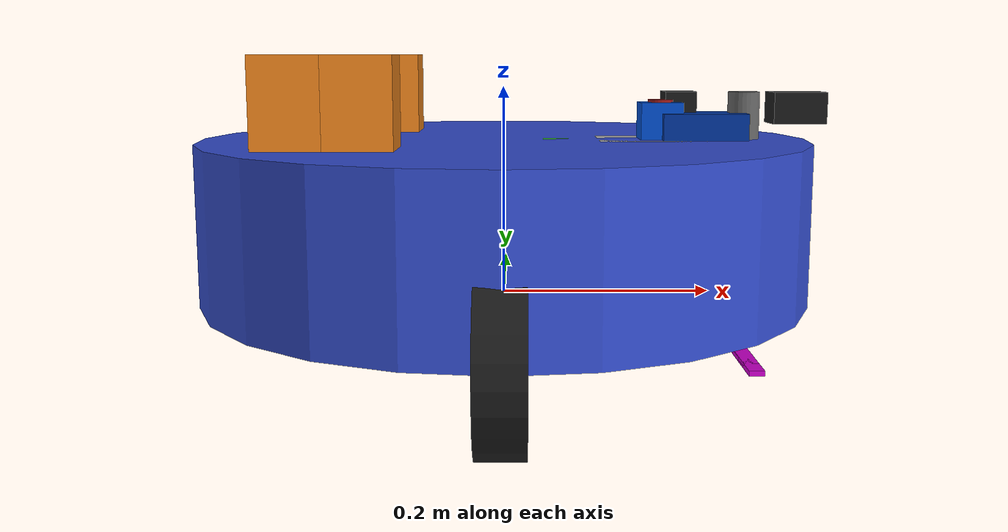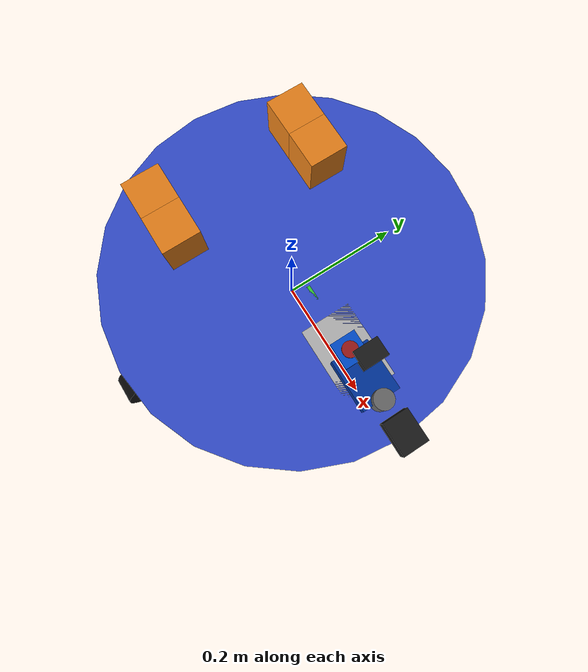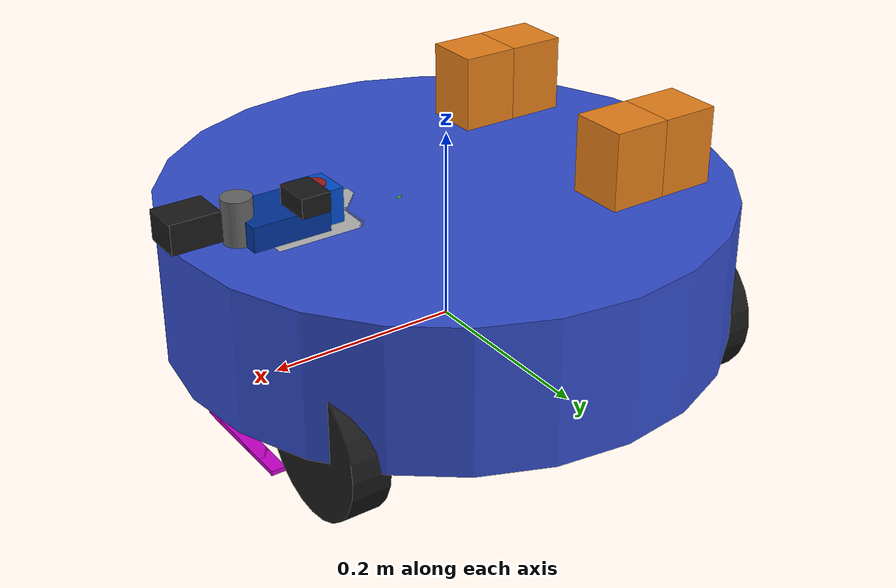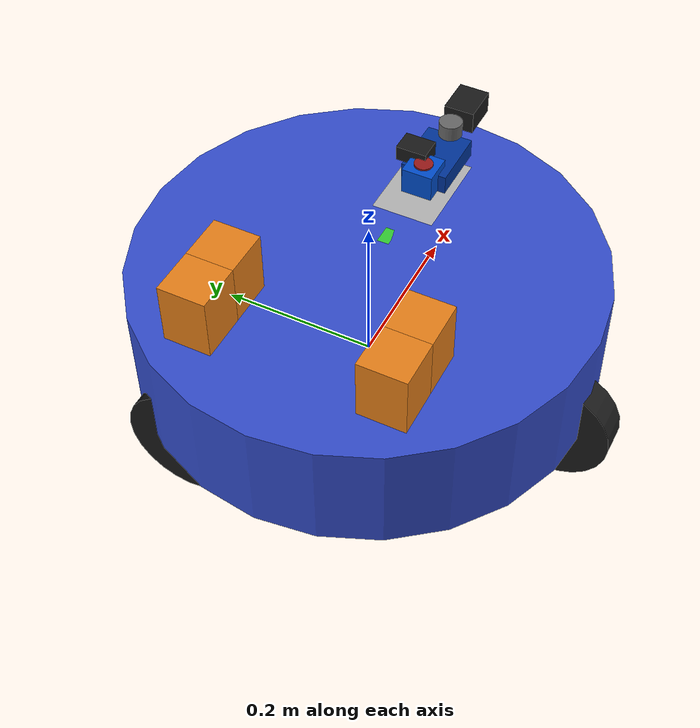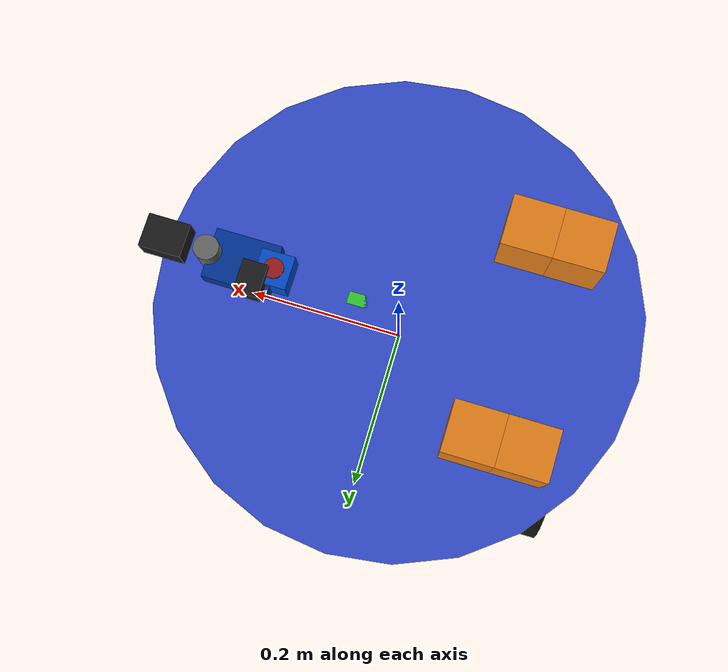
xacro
<?xml version="1.0"?>
<robot name="my_robot" xmlns:xacro="http://www.ros.org/wiki/xacro">

  <!-- Arguments -->
  <xacro:arg name="use_ros2_control" default="true"/>
  <xacro:arg name="use_sim_time" default="true"/>

  <!-- Macros defined below -->

  <!-- Robot base properties - Hexagonal robot -->
  <xacro:property name="base_radius" value="0.3"/>
  <xacro:property name="base_height" value="0.15"/>
  <xacro:property name="wheel_radius" value="0.075"/>
  <xacro:property name="wheel_width" value="0.04"/>
  <!-- Hexagonal shape properties -->
  <xacro:property name="hexagon_side" value="0.25"/>

  <!-- Wheel positions for 3-wheeled omnidirectional robot (lf, rf, b) -->
  <!-- Front Left wheel -->
  <xacro:property name="wheel_lf_x" value="${hexagon_side * 0.866}"/> <!-- cos(30°) -->
  <xacro:property name="wheel_lf_y" value="${hexagon_side * 0.5}"/>   <!-- sin(30°) -->
  <!-- Front Right wheel -->
  <xacro:property name="wheel_rf_x" value="${-hexagon_side * 0.866}"/> <!-- -cos(30°) -->
  <xacro:property name="wheel_rf_y" value="${hexagon_side * 0.5}"/>   <!-- sin(30°) -->
  <!-- Back wheel -->
  <xacro:property name="wheel_b_x" value="0"/>
  <xacro:property name="wheel_b_y" value="${-hexagon_side}"/>

  <!-- Base link - Hexagonal robot -->
  <link name="base_link">
    <visual>
      <geometry>
        <!-- Hexagonal prism approximation using cylinder -->
        <cylinder length="${base_height}" radius="${hexagon_side * 1.1547}"/> <!-- sqrt(4/3) * side for circumradius -->
      </geometry>
      <material name="blue">
        <color rgba="0.2 0.3 0.8 1.0"/>
      </material>
      <origin xyz="0 0 ${base_height/2}" rpy="0 0 0"/>
    </visual>
    <collision>
      <geometry>
        <!-- Hexagonal prism approximation using cylinder -->
        <cylinder length="${base_height}" radius="${hexagon_side * 1.1547}"/>
      </geometry>
      <origin xyz="0 0 ${base_height/2}" rpy="0 0 0"/>
    </collision>
    <inertial>
      <mass value="10.0"/>
      <!-- Hexagonal inertia calculation -->
      <inertia ixx="0.15" ixy="0.0" ixz="0.0"
               iyy="0.15" iyz="0.0"
               izz="0.25"/>
      <origin xyz="0 0 ${base_height/2}" rpy="0 0 0"/>
    </inertial>
  </link>

  <!-- Omni wheels -->
  <xacro:macro name="omni_wheel" params="name x y">
    <link name="${name}_link">
      <visual>
        <geometry>
          <cylinder length="${wheel_width}" radius="${wheel_radius}"/>
        </geometry>
        <material name="black">
          <color rgba="0.1 0.1 0.1 1.0"/>
        </material>
        <origin xyz="0 0 0" rpy="0 ${pi/2} 0"/>
      </visual>
      <collision>
        <geometry>
          <cylinder length="${wheel_width}" radius="${wheel_radius}"/>
        </geometry>
        <origin xyz="0 0 0" rpy="0 ${pi/2} 0"/>
      </collision>
      <inertial>
        <mass value="0.5"/>
        <inertia ixx="0.005" ixy="0.0" ixz="0.0"
                 iyy="0.005" iyz="0.0"
                 izz="0.01"/>
      </inertial>
    </link>

    <!-- Joint connecting wheel to base -->
    <joint name="${name}_joint" type="continuous">
      <parent link="base_link"/>
      <child link="${name}_link"/>
      <origin xyz="${x} ${y} 0" rpy="0 0 0"/>
      <axis xyz="0 1 0"/>
    </joint>

    <!-- Omni wheel rollers (simplified as passive joints) -->
    <link name="${name}_roller_link">
      <visual>
        <geometry>
          <cylinder length="0.01" radius="0.02"/>
        </geometry>
        <material name="gray">
          <color rgba="0.5 0.5 0.5 1.0"/>
        </material>
        <origin xyz="0 0 0" rpy="${pi/2} 0 0"/>
      </visual>
      <collision>
        <geometry>
          <cylinder length="0.01" radius="0.02"/>
        </geometry>
        <origin xyz="0 0 0" rpy="${pi/2} 0 0"/>
      </collision>
      <inertial>
        <mass value="0.1"/>
        <inertia ixx="0.001" ixy="0.0" ixz="0.0"
                 iyy="0.001" iyz="0.0"
                 izz="0.002"/>
      </inertial>
    </link>

    <!-- Passive joint for rollers -->
    <joint name="${name}_roller_joint" type="continuous">
      <parent link="${name}_link"/>
      <child link="${name}_roller_link"/>
      <origin xyz="0 0 0" rpy="0 0 0"/>
      <axis xyz="1 0 0"/>
    </joint>

    <xacro:if value="$(arg use_ros2_control)">
      <!-- ROS 2 Control interface placeholder -->
    </xacro:if>
  </xacro:macro>

  <!-- Create three omni wheels (lf, rf, b) -->
  <xacro:omni_wheel name="wheel_lf" x="${wheel_lf_x}" y="${wheel_lf_y}"/>
  <xacro:omni_wheel name="wheel_rf" x="${wheel_rf_x}" y="${wheel_rf_y}"/>
  <xacro:omni_wheel name="wheel_b" x="${wheel_b_x}" y="${wheel_b_y}"/>

  <!-- TF-Luna Single-Point LIDAR -->
  <link name="tf_luna_link">
    <visual>
      <geometry>
        <cylinder length="0.035" radius="0.012"/>
      </geometry>
      <material name="dark_red">
        <color rgba="0.6 0.1 0.1 1.0"/>
      </material>
      <origin xyz="0 0 0" rpy="0 0 0"/>
    </visual>
    <collision>
      <geometry>
        <cylinder length="0.035" radius="0.012"/>
      </geometry>
      <origin xyz="0 0 0" rpy="0 0 0"/>
    </collision>
    <inertial>
      <mass value="0.015"/>
      <inertia ixx="0.000005" ixy="0.0" ixz="0.0"
               iyy="0.000005" iyz="0.0"
               izz="0.00001"/>
    </inertial>
  </link>

  <joint name="tf_luna_joint" type="fixed">
    <parent link="base_link"/>
    <child link="tf_luna_link"/>
    <origin xyz="0.15 0 ${base_height + 0.02}" rpy="0 0 0"/>
  </joint>

  <!-- Laser Distance Sensors (6x - 2 per side for wall alignment) -->
  <xacro:macro name="laser_distance_sensor" params="name x y z">
    <link name="${name}_link">
      <visual>
        <geometry>
          <cylinder length="0.03" radius="0.012"/>
        </geometry>
        <material name="red">
          <color rgba="0.8 0.1 0.1 1.0"/>
        </material>
        <origin xyz="0 0 0" rpy="0 0 0"/>
      </visual>
      <collision>
        <geometry>
          <cylinder length="0.03" radius="0.012"/>
        </geometry>
        <origin xyz="0 0 0" rpy="0 0 0"/>
      </collision>
      <inertial>
        <mass value="0.04"/>
        <inertia ixx="0.00005" ixy="0.0" ixz="0.0"
                 iyy="0.00005" iyz="0.0"
                 izz="0.0001"/>
      </inertial>
    </link>

    <joint name="${name}_joint" type="fixed">
      <parent link="base_link"/>
      <child link="${name}_link"/>
      <origin xyz="${x} ${y} ${z}" rpy="0 0 0"/>
    </joint>
  </xacro:macro>

  <!-- HC-SR04 Ultrasonic Sensors (2x front) -->
  <xacro:macro name="hcsr04_sensor" params="name x y z">
    <link name="${name}_link">
      <visual>
        <geometry>
          <cylinder length="0.025" radius="0.008"/>
        </geometry>
        <material name="yellow">
          <color rgba="1.0 1.0 0.0 1.0"/>
        </material>
        <origin xyz="0 0 0" rpy="0 0 0"/>
      </visual>
      <collision>
        <geometry>
          <cylinder length="0.025" radius="0.008"/>
        </geometry>
        <origin xyz="0 0 0" rpy="0 0 0"/>
      </collision>
      <inertial>
        <mass value="0.03"/>
        <inertia ixx="0.00003" ixy="0.0" ixz="0.0"
                 iyy="0.00003" iyz="0.0"
                 izz="0.00006"/>
      </inertial>
    </link>

    <joint name="${name}_joint" type="fixed">
      <parent link="base_link"/>
      <child link="${name}_link"/>
      <origin xyz="${x} ${y} ${z}" rpy="0 0 0"/>
    </joint>
  </xacro:macro>

  <!-- Line Sensors (3x individual, assembled side by side) -->
  <xacro:macro name="line_sensor" params="name x y z">
    <link name="${name}_link">
      <visual>
        <geometry>
          <box size="0.015 0.08 0.005"/>
        </geometry>
        <material name="purple">
          <color rgba="0.8 0.0 0.8 1.0"/>
        </material>
        <origin xyz="0 0 0" rpy="0 0 0"/>
      </visual>
      <collision>
        <geometry>
          <box size="0.015 0.08 0.005"/>
        </geometry>
        <origin xyz="0 0 0" rpy="0 0 0"/>
      </collision>
      <inertial>
        <mass value="0.02"/>
        <inertia ixx="0.00001" ixy="0.0" ixz="0.0"
                 iyy="0.00001" iyz="0.0"
                 izz="0.00002"/>
      </inertial>
    </link>

    <joint name="${name}_joint" type="fixed">
      <parent link="base_link"/>
      <child link="${name}_link"/>
      <origin xyz="${x} ${y} ${z}" rpy="0 0 0"/>
    </joint>
  </xacro:macro>

  <!-- Create laser distance sensors (6x - 2 per side for wall alignment) -->
  <!-- Left side sensors -->
  <xacro:laser_distance_sensor name="laser_left_front" x="${hexagon_side * 0.433}" y="${hexagon_side * 0.75}" z="${base_height/2}"/>
  <xacro:laser_distance_sensor name="laser_left_back" x="${-hexagon_side * 0.433}" y="${hexagon_side * 0.75}" z="${base_height/2}"/>

  <!-- Right side sensors -->
  <xacro:laser_distance_sensor name="laser_right_front" x="${hexagon_side * 0.433}" y="${-hexagon_side * 0.75}" z="${base_height/2}"/>
  <xacro:laser_distance_sensor name="laser_right_back" x="${-hexagon_side * 0.433}" y="${-hexagon_side * 0.75}" z="${base_height/2}"/>

  <!-- Back side sensors -->
  <xacro:laser_distance_sensor name="laser_back_left" x="${-hexagon_side}" y="${hexagon_side * 0.25}" z="${base_height/2}"/>
  <xacro:laser_distance_sensor name="laser_back_right" x="${-hexagon_side}" y="${-hexagon_side * 0.25}" z="${base_height/2}"/>

  <!-- Create HC-SR04 ultrasonic sensors (2x front) -->
  <xacro:hcsr04_sensor name="hcsr04_front_left" x="${hexagon_side * 0.866}" y="${hexagon_side * 0.3}" z="${base_height/2}"/>
  <xacro:hcsr04_sensor name="hcsr04_front_right" x="${hexagon_side * 0.866}" y="${-hexagon_side * 0.3}" z="${base_height/2}"/>

  <!-- Create line sensors (3x individual, assembled side by side at front) -->
  <xacro:line_sensor name="line_sensor_left" x="${hexagon_side * 0.95}" y="0.025" z="-${base_height/2 - 0.01}"/>
  <xacro:line_sensor name="line_sensor_center" x="${hexagon_side * 0.95}" y="0" z="-${base_height/2 - 0.01}"/>
  <xacro:line_sensor name="line_sensor_right" x="${hexagon_side * 0.95}" y="-0.025" z="-${base_height/2 - 0.01}"/>

  <!-- MPU6050 IMU -->
  <link name="mpu6050_link">
    <visual>
      <geometry>
        <box size="0.025 0.015 0.01"/>
      </geometry>
      <material name="green">
        <color rgba="0.2 0.8 0.2 1.0"/>
      </material>
      <origin xyz="0 0 0" rpy="0 0 0"/>
    </visual>
    <collision>
      <geometry>
        <box size="0.025 0.015 0.01"/>
      </geometry>
      <origin xyz="0 0 0" rpy="0 0 0"/>
    </collision>
    <inertial>
      <mass value="0.005"/>
      <inertia ixx="0.000001" ixy="0.0" ixz="0.0"
               iyy="0.000001" iyz="0.0"
               izz="0.000002"/>
    </inertial>
  </link>

  <joint name="mpu6050_joint" type="fixed">
    <parent link="base_link"/>
    <child link="mpu6050_link"/>
    <origin xyz="0.05 0 ${base_height - 0.005}" rpy="0 0 0"/>
  </joint>

  <!-- Camera frame -->
  <link name="camera_link">
    <visual>
      <geometry>
        <box size="0.05 0.04 0.03"/>
      </geometry>
      <material name="black">
        <color rgba="0.1 0.1 0.1 1.0"/>
      </material>
    </visual>
    <collision>
      <geometry>
        <box size="0.05 0.04 0.03"/>
      </geometry>
    </collision>
    <inertial>
      <mass value="0.1"/>
      <inertia ixx="0.0005" ixy="0.0" ixz="0.0"
               iyy="0.0005" iyz="0.0"
               izz="0.001"/>
    </inertial>
  </link>

  <joint name="camera_joint" type="fixed">
    <parent link="base_link"/>
    <child link="camera_link"/>
    <origin xyz="${base_radius - 0.02} 0 ${base_height + 0.03}" rpy="0 0 0"/>
  </joint>

  <!-- Gripper Assembly Base (DC Motor for up/down movement) -->
  <link name="gripper_base_link">
    <visual>
      <geometry>
        <box size="0.12 0.08 0.15"/>
      </geometry>
      <material name="silver">
        <color rgba="0.7 0.7 0.7 1.0"/>
      </material>
      <origin xyz="0 0 0" rpy="0 0 0"/>
    </visual>
    <collision>
      <geometry>
        <box size="0.12 0.08 0.15"/>
      </geometry>
      <origin xyz="0 0 0" rpy="0 0 0"/>
    </collision>
    <inertial>
      <mass value="1.5"/>
      <inertia ixx="0.05" ixy="0.0" ixz="0.0"
               iyy="0.05" iyz="0.0"
               izz="0.03"/>
    </inertial>
  </link>

  <joint name="gripper_base_joint" type="prismatic">
    <parent link="base_link"/>
    <child link="gripper_base_link"/>
    <origin xyz="0.15 0 ${base_height/2}" rpy="0 0 0"/>
    <axis xyz="0 0 1"/>
    <limit effort="50.0" lower="0.0" upper="0.2" velocity="0.15"/>
  </joint>

  <!-- Gripper Components -->

  <!-- Gripper Tilt Servo -->
  <link name="gripper_tilt_link">
    <visual>
      <geometry>
        <box size="0.04 0.04 0.06"/>
      </geometry>
      <material name="blue">
        <color rgba="0.0 0.3 0.8 1.0"/>
      </material>
      <origin xyz="0 0 0" rpy="0 0 0"/>
    </visual>
    <collision>
      <geometry>
        <box size="0.04 0.04 0.06"/>
      </geometry>
      <origin xyz="0 0 0" rpy="0 0 0"/>
    </collision>
    <inertial>
      <mass value="0.08"/>
      <inertia ixx="0.00005" ixy="0.0" ixz="0.0"
               iyy="0.00005" iyz="0.0"
               izz="0.0001"/>
    </inertial>
  </link>

  <joint name="gripper_tilt_joint" type="revolute">
    <parent link="gripper_base_link"/>
    <child link="gripper_tilt_link"/>
    <origin xyz="0 0 0.08" rpy="0 0 0"/>
    <axis xyz="0 1 0"/>
    <limit effort="8.0" lower="-1.57" upper="1.57" velocity="1.5"/>
  </joint>

  <!-- Gripper Open/Close Servo -->
  <link name="gripper_claw_link">
    <visual>
      <geometry>
        <box size="0.08 0.06 0.04"/>
      </geometry>
      <material name="dark_blue">
        <color rgba="0.0 0.2 0.6 1.0"/>
      </material>
      <origin xyz="0 0 0" rpy="0 0 0"/>
    </visual>
    <collision>
      <geometry>
        <box size="0.08 0.06 0.04"/>
      </geometry>
      <origin xyz="0 0 0" rpy="0 0 0"/>
    </collision>
    <inertial>
      <mass value="0.12"/>
      <inertia ixx="0.00008" ixy="0.0" ixz="0.0"
               iyy="0.00008" iyz="0.0"
               izz="0.00015"/>
    </inertial>
  </link>

  <joint name="gripper_claw_joint" type="revolute">
    <parent link="gripper_tilt_link"/>
    <child link="gripper_claw_link"/>
    <origin xyz="0.04 0 0" rpy="0 0 0"/>
    <axis xyz="0 0 1"/>
    <limit effort="6.0" lower="0.0" upper="1.57" velocity="2.0"/>
  </joint>

  <!-- 360-degree Servo for Forward/Backward Movement (Optional) -->
  <link name="gripper_extension_link">
    <visual>
      <geometry>
        <cylinder length="0.08" radius="0.015"/>
      </geometry>
      <material name="gray">
        <color rgba="0.4 0.4 0.4 1.0"/>
      </material>
      <origin xyz="0 0 0" rpy="0 0 0"/>
    </visual>
    <collision>
      <geometry>
        <cylinder length="0.08" radius="0.015"/>
      </geometry>
      <origin xyz="0 0 0" rpy="0 0 0"/>
    </collision>
    <inertial>
      <mass value="0.06"/>
      <inertia ixx="0.00002" ixy="0.0" ixz="0.0"
               iyy="0.00002" iyz="0.0"
               izz="0.00004"/>
    </inertial>
  </link>

  <joint name="gripper_extension_joint" type="continuous">
    <parent link="gripper_claw_link"/>
    <child link="gripper_extension_link"/>
    <origin xyz="0.04 0 0" rpy="0 0 0"/>
    <axis xyz="1 0 0"/>
  </joint>

  <!-- USB Camera mounted on gripper -->
  <link name="gripper_camera_link">
    <visual>
      <geometry>
        <box size="0.03 0.04 0.02"/>
      </geometry>
      <material name="black">
        <color rgba="0.1 0.1 0.1 1.0"/>
      </material>
      <origin xyz="0 0 0" rpy="0 0 0"/>
    </visual>
    <collision>
      <geometry>
        <box size="0.03 0.04 0.02"/>
      </geometry>
      <origin xyz="0 0 0" rpy="0 0 0"/>
    </collision>
    <inertial>
      <mass value="0.04"/>
      <inertia ixx="0.00001" ixy="0.0" ixz="0.0"
               iyy="0.00001" iyz="0.0"
               izz="0.00002"/>
    </inertial>
  </link>

  <joint name="gripper_camera_joint" type="fixed">
    <parent link="gripper_tilt_link"/>
    <child link="gripper_camera_link"/>
    <origin xyz="0.02 0.02 0.03" rpy="0 0 0"/>
  </joint>

  <!-- Container Load System (4 containers) -->
  <xacro:macro name="container" params="name x y z">
    <link name="${name}_link">
      <visual>
        <geometry>
          <box size="0.06 0.06 0.08"/>
        </geometry>
        <material name="orange">
          <color rgba="0.9 0.5 0.1 1.0"/>
        </material>
        <origin xyz="0 0 0" rpy="0 0 0"/>
      </visual>
      <collision>
        <geometry>
          <box size="0.06 0.06 0.08"/>
        </geometry>
        <origin xyz="0 0 0" rpy="0 0 0"/>
      </collision>
      <inertial>
        <mass value="0.3"/>
        <inertia ixx="0.001" ixy="0.0" ixz="0.0"
                 iyy="0.001" iyz="0.0"
                 izz="0.002"/>
      </inertial>
    </link>

    <joint name="${name}_joint" type="fixed">
      <parent link="base_link"/>
      <child link="${name}_link"/>
      <origin xyz="${x} ${y} ${z}" rpy="0 0 0"/>
    </joint>
  </xacro:macro>

  <!-- Create 4 containers -->
  <xacro:container name="container_left_front" x="-0.12" y="0.12" z="${base_height + 0.04}"/>
  <xacro:container name="container_left_back" x="-0.18" y="0.12" z="${base_height + 0.04}"/>
  <xacro:container name="container_right_front" x="-0.12" y="-0.12" z="${base_height + 0.04}"/>
  <xacro:container name="container_right_back" x="-0.18" y="-0.12" z="${base_height + 0.04}"/>

</robot>
